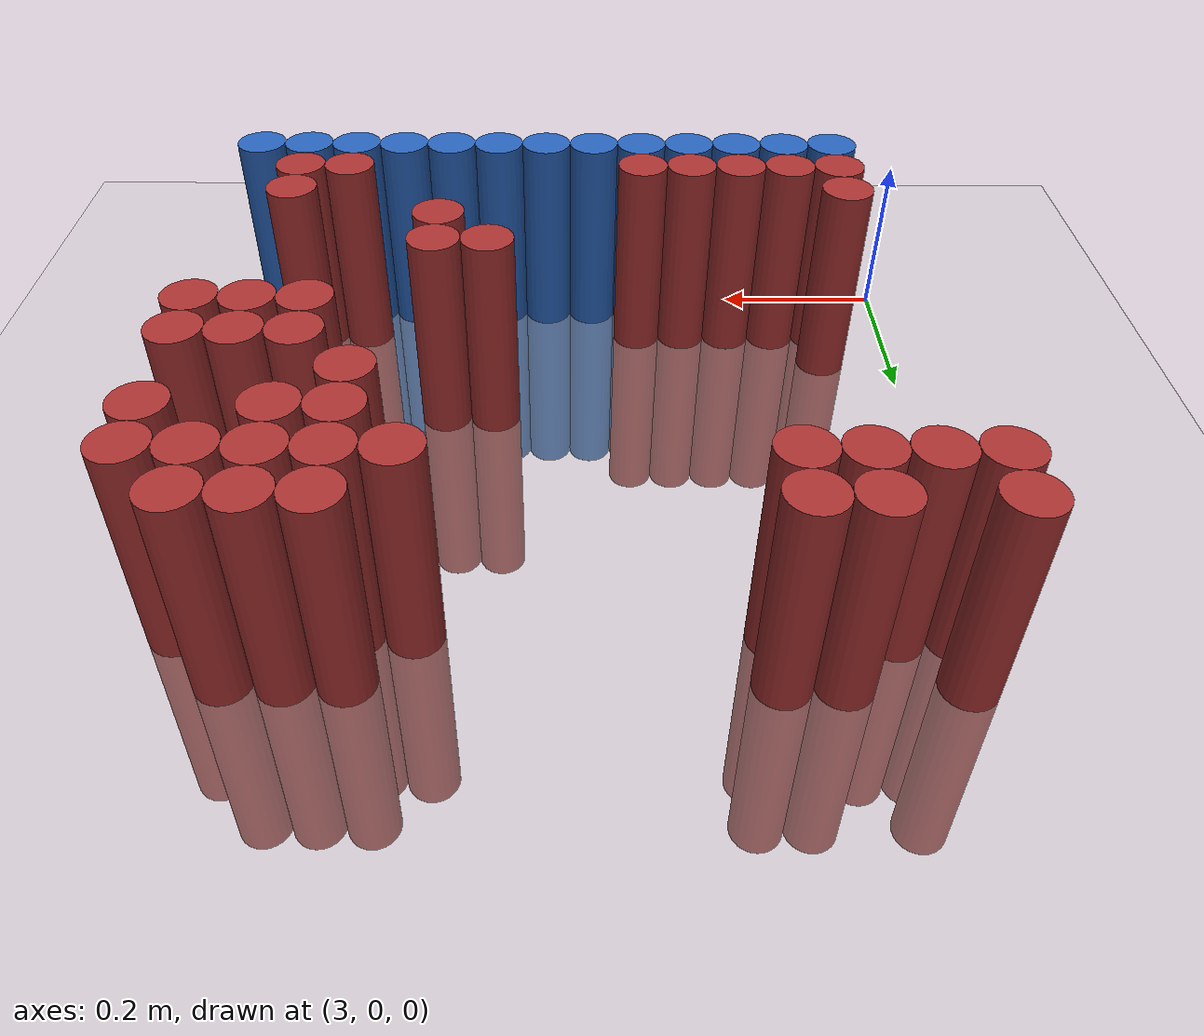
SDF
<sdf version="1.6">
 <world name="default">
  <model name="ground_plane">
   <static>1</static>
   <link name="link">
    <collision name="collision">
     <geometry><plane><normal>0 0 1</normal><size>100 100</size></plane></geometry>
     <surface><friction><ode><mu>100</mu><mu2>50</mu2></ode></friction></surface>
    </collision>
    <visual name="visual">
     <cast_shadows>0</cast_shadows>
     <geometry><plane><normal>0 0 1</normal><size>100 100</size></plane></geometry>
     <material>
      <script><uri>file://media/materials/scripts/gazebo.material</uri><name>Gazebo/Grey</name></script>
     </material>
    </visual>
   </link>
  </model>
  <model name="unit_cylinder_230">
   <static>1</static>
   <pose>3.030000 0.690000 0.000000 0.000000 0.000000 0.000000</pose>
   <link name="link">
    <inertial>
     <mass>1</mass>
     <inertia><ixx>0.145833</ixx><ixy>0</ixy><ixz>0</ixz><iyy>0.145833</iyy><iyz>0</iyz><izz>0.125</izz></inertia>
    </inertial>
    <collision name="collision">
     <geometry><cylinder><radius>0.030000</radius><length>0.5</length></cylinder></geometry>
    </collision>
    <visual name="visual">
     <geometry><cylinder><radius>0.030000</radius><length>0.5</length></cylinder></geometry>
     <material>
      <ambient>0.648000 0.192000 0.192000 1</ambient>
      <diffuse>0.648000 0.192000 0.192000 1</diffuse>
     </material>
     <material>
      <script><name>Gazebo/Grey</name><uri>file://media/materials/scripts/gazebo.material</uri></script>
     </material>
    </visual>
   </link>
  </model>
  <model name="unit_cylinder_231">
   <static>1</static>
   <pose>3.150000 0.690000 0.000000 0.000000 0.000000 0.000000</pose>
   <link name="link">
    <inertial>
     <mass>1</mass>
     <inertia><ixx>0.145833</ixx><ixy>0</ixy><ixz>0</ixz><iyy>0.145833</iyy><iyz>0</iyz><izz>0.125</izz></inertia>
    </inertial>
    <collision name="collision">
     <geometry><cylinder><radius>0.030000</radius><length>0.5</length></cylinder></geometry>
    </collision>
    <visual name="visual">
     <geometry><cylinder><radius>0.030000</radius><length>0.5</length></cylinder></geometry>
     <material>
      <ambient>0.648000 0.192000 0.192000 1</ambient>
      <diffuse>0.648000 0.192000 0.192000 1</diffuse>
     </material>
     <material>
      <script><name>Gazebo/Grey</name><uri>file://media/materials/scripts/gazebo.material</uri></script>
     </material>
    </visual>
   </link>
  </model>
  <model name="unit_cylinder_232">
   <static>1</static>
   <pose>3.210000 0.690000 0.000000 0.000000 0.000000 0.000000</pose>
   <link name="link">
    <inertial>
     <mass>1</mass>
     <inertia><ixx>0.145833</ixx><ixy>0</ixy><ixz>0</ixz><iyy>0.145833</iyy><iyz>0</iyz><izz>0.125</izz></inertia>
    </inertial>
    <collision name="collision">
     <geometry><cylinder><radius>0.030000</radius><length>0.5</length></cylinder></geometry>
    </collision>
    <visual name="visual">
     <geometry><cylinder><radius>0.030000</radius><length>0.5</length></cylinder></geometry>
     <material>
      <ambient>0.648000 0.192000 0.192000 1</ambient>
      <diffuse>0.648000 0.192000 0.192000 1</diffuse>
     </material>
     <material>
      <script><name>Gazebo/Grey</name><uri>file://media/materials/scripts/gazebo.material</uri></script>
     </material>
    </visual>
   </link>
  </model>
  <model name="unit_cylinder_233">
   <static>1</static>
   <pose>3.630000 0.690000 0.000000 0.000000 0.000000 0.000000</pose>
   <link name="link">
    <inertial>
     <mass>1</mass>
     <inertia><ixx>0.145833</ixx><ixy>0</ixy><ixz>0</ixz><iyy>0.145833</iyy><iyz>0</iyz><izz>0.125</izz></inertia>
    </inertial>
    <collision name="collision">
     <geometry><cylinder><radius>0.030000</radius><length>0.5</length></cylinder></geometry>
    </collision>
    <visual name="visual">
     <geometry><cylinder><radius>0.030000</radius><length>0.5</length></cylinder></geometry>
     <material>
      <ambient>0.648000 0.192000 0.192000 1</ambient>
      <diffuse>0.648000 0.192000 0.192000 1</diffuse>
     </material>
     <material>
      <script><name>Gazebo/Grey</name><uri>file://media/materials/scripts/gazebo.material</uri></script>
     </material>
    </visual>
   </link>
  </model>
  <model name="unit_cylinder_234">
   <static>1</static>
   <pose>3.690000 0.690000 0.000000 0.000000 0.000000 0.000000</pose>
   <link name="link">
    <inertial>
     <mass>1</mass>
     <inertia><ixx>0.145833</ixx><ixy>0</ixy><ixz>0</ixz><iyy>0.145833</iyy><iyz>0</iyz><izz>0.125</izz></inertia>
    </inertial>
    <collision name="collision">
     <geometry><cylinder><radius>0.030000</radius><length>0.5</length></cylinder></geometry>
    </collision>
    <visual name="visual">
     <geometry><cylinder><radius>0.030000</radius><length>0.5</length></cylinder></geometry>
     <material>
      <ambient>0.648000 0.192000 0.192000 1</ambient>
      <diffuse>0.648000 0.192000 0.192000 1</diffuse>
     </material>
     <material>
      <script><name>Gazebo/Grey</name><uri>file://media/materials/scripts/gazebo.material</uri></script>
     </material>
    </visual>
   </link>
  </model>
  <model name="unit_cylinder_235">
   <static>1</static>
   <pose>3.750000 0.690000 0.000000 0.000000 0.000000 0.000000</pose>
   <link name="link">
    <inertial>
     <mass>1</mass>
     <inertia><ixx>0.145833</ixx><ixy>0</ixy><ixz>0</ixz><iyy>0.145833</iyy><iyz>0</iyz><izz>0.125</izz></inertia>
    </inertial>
    <collision name="collision">
     <geometry><cylinder><radius>0.030000</radius><length>0.5</length></cylinder></geometry>
    </collision>
    <visual name="visual">
     <geometry><cylinder><radius>0.030000</radius><length>0.5</length></cylinder></geometry>
     <material>
      <ambient>0.648000 0.192000 0.192000 1</ambient>
      <diffuse>0.648000 0.192000 0.192000 1</diffuse>
     </material>
     <material>
      <script><name>Gazebo/Grey</name><uri>file://media/materials/scripts/gazebo.material</uri></script>
     </material>
    </visual>
   </link>
  </model>
  <model name="unit_cylinder_237">
   <static>1</static>
   <pose>3.030000 0.630000 0.000000 0.000000 0.000000 0.000000</pose>
   <link name="link">
    <inertial>
     <mass>1</mass>
     <inertia><ixx>0.145833</ixx><ixy>0</ixy><ixz>0</ixz><iyy>0.145833</iyy><iyz>0</iyz><izz>0.125</izz></inertia>
    </inertial>
    <collision name="collision">
     <geometry><cylinder><radius>0.030000</radius><length>0.5</length></cylinder></geometry>
    </collision>
    <visual name="visual">
     <geometry><cylinder><radius>0.030000</radius><length>0.5</length></cylinder></geometry>
     <material>
      <ambient>0.648000 0.192000 0.192000 1</ambient>
      <diffuse>0.648000 0.192000 0.192000 1</diffuse>
     </material>
     <material>
      <script><name>Gazebo/Grey</name><uri>file://media/materials/scripts/gazebo.material</uri></script>
     </material>
    </visual>
   </link>
  </model>
  <model name="unit_cylinder_238">
   <static>1</static>
   <pose>3.090000 0.630000 0.000000 0.000000 0.000000 0.000000</pose>
   <link name="link">
    <inertial>
     <mass>1</mass>
     <inertia><ixx>0.145833</ixx><ixy>0</ixy><ixz>0</ixz><iyy>0.145833</iyy><iyz>0</iyz><izz>0.125</izz></inertia>
    </inertial>
    <collision name="collision">
     <geometry><cylinder><radius>0.030000</radius><length>0.5</length></cylinder></geometry>
    </collision>
    <visual name="visual">
     <geometry><cylinder><radius>0.030000</radius><length>0.5</length></cylinder></geometry>
     <material>
      <ambient>0.648000 0.192000 0.192000 1</ambient>
      <diffuse>0.648000 0.192000 0.192000 1</diffuse>
     </material>
     <material>
      <script><name>Gazebo/Grey</name><uri>file://media/materials/scripts/gazebo.material</uri></script>
     </material>
    </visual>
   </link>
  </model>
  <model name="unit_cylinder_239">
   <static>1</static>
   <pose>3.150000 0.630000 0.000000 0.000000 0.000000 0.000000</pose>
   <link name="link">
    <inertial>
     <mass>1</mass>
     <inertia><ixx>0.145833</ixx><ixy>0</ixy><ixz>0</ixz><iyy>0.145833</iyy><iyz>0</iyz><izz>0.125</izz></inertia>
    </inertial>
    <collision name="collision">
     <geometry><cylinder><radius>0.030000</radius><length>0.5</length></cylinder></geometry>
    </collision>
    <visual name="visual">
     <geometry><cylinder><radius>0.030000</radius><length>0.5</length></cylinder></geometry>
     <material>
      <ambient>0.648000 0.192000 0.192000 1</ambient>
      <diffuse>0.648000 0.192000 0.192000 1</diffuse>
     </material>
     <material>
      <script><name>Gazebo/Grey</name><uri>file://media/materials/scripts/gazebo.material</uri></script>
     </material>
    </visual>
   </link>
  </model>
  <model name="unit_cylinder_240">
   <static>1</static>
   <pose>3.210000 0.630000 0.000000 0.000000 0.000000 0.000000</pose>
   <link name="link">
    <inertial>
     <mass>1</mass>
     <inertia><ixx>0.145833</ixx><ixy>0</ixy><ixz>0</ixz><iyy>0.145833</iyy><iyz>0</iyz><izz>0.125</izz></inertia>
    </inertial>
    <collision name="collision">
     <geometry><cylinder><radius>0.030000</radius><length>0.5</length></cylinder></geometry>
    </collision>
    <visual name="visual">
     <geometry><cylinder><radius>0.030000</radius><length>0.5</length></cylinder></geometry>
     <material>
      <ambient>0.648000 0.192000 0.192000 1</ambient>
      <diffuse>0.648000 0.192000 0.192000 1</diffuse>
     </material>
     <material>
      <script><name>Gazebo/Grey</name><uri>file://media/materials/scripts/gazebo.material</uri></script>
     </material>
    </visual>
   </link>
  </model>
  <model name="unit_cylinder_241">
   <static>1</static>
   <pose>3.570000 0.630000 0.000000 0.000000 0.000000 0.000000</pose>
   <link name="link">
    <inertial>
     <mass>1</mass>
     <inertia><ixx>0.145833</ixx><ixy>0</ixy><ixz>0</ixz><iyy>0.145833</iyy><iyz>0</iyz><izz>0.125</izz></inertia>
    </inertial>
    <collision name="collision">
     <geometry><cylinder><radius>0.030000</radius><length>0.5</length></cylinder></geometry>
    </collision>
    <visual name="visual">
     <geometry><cylinder><radius>0.030000</radius><length>0.5</length></cylinder></geometry>
     <material>
      <ambient>0.648000 0.192000 0.192000 1</ambient>
      <diffuse>0.648000 0.192000 0.192000 1</diffuse>
     </material>
     <material>
      <script><name>Gazebo/Grey</name><uri>file://media/materials/scripts/gazebo.material</uri></script>
     </material>
    </visual>
   </link>
  </model>
  <model name="unit_cylinder_242">
   <static>1</static>
   <pose>3.630000 0.630000 0.000000 0.000000 0.000000 0.000000</pose>
   <link name="link">
    <inertial>
     <mass>1</mass>
     <inertia><ixx>0.145833</ixx><ixy>0</ixy><ixz>0</ixz><iyy>0.145833</iyy><iyz>0</iyz><izz>0.125</izz></inertia>
    </inertial>
    <collision name="collision">
     <geometry><cylinder><radius>0.030000</radius><length>0.5</length></cylinder></geometry>
    </collision>
    <visual name="visual">
     <geometry><cylinder><radius>0.030000</radius><length>0.5</length></cylinder></geometry>
     <material>
      <ambient>0.648000 0.192000 0.192000 1</ambient>
      <diffuse>0.648000 0.192000 0.192000 1</diffuse>
     </material>
     <material>
      <script><name>Gazebo/Grey</name><uri>file://media/materials/scripts/gazebo.material</uri></script>
     </material>
    </visual>
   </link>
  </model>
  <model name="unit_cylinder_243">
   <static>1</static>
   <pose>3.690000 0.630000 0.000000 0.000000 0.000000 0.000000</pose>
   <link name="link">
    <inertial>
     <mass>1</mass>
     <inertia><ixx>0.145833</ixx><ixy>0</ixy><ixz>0</ixz><iyy>0.145833</iyy><iyz>0</iyz><izz>0.125</izz></inertia>
    </inertial>
    <collision name="collision">
     <geometry><cylinder><radius>0.030000</radius><length>0.5</length></cylinder></geometry>
    </collision>
    <visual name="visual">
     <geometry><cylinder><radius>0.030000</radius><length>0.5</length></cylinder></geometry>
     <material>
      <ambient>0.648000 0.192000 0.192000 1</ambient>
      <diffuse>0.648000 0.192000 0.192000 1</diffuse>
     </material>
     <material>
      <script><name>Gazebo/Grey</name><uri>file://media/materials/scripts/gazebo.material</uri></script>
     </material>
    </visual>
   </link>
  </model>
  <model name="unit_cylinder_244">
   <static>1</static>
   <pose>3.750000 0.630000 0.000000 0.000000 0.000000 0.000000</pose>
   <link name="link">
    <inertial>
     <mass>1</mass>
     <inertia><ixx>0.145833</ixx><ixy>0</ixy><ixz>0</ixz><iyy>0.145833</iyy><iyz>0</iyz><izz>0.125</izz></inertia>
    </inertial>
    <collision name="collision">
     <geometry><cylinder><radius>0.030000</radius><length>0.5</length></cylinder></geometry>
    </collision>
    <visual name="visual">
     <geometry><cylinder><radius>0.030000</radius><length>0.5</length></cylinder></geometry>
     <material>
      <ambient>0.648000 0.192000 0.192000 1</ambient>
      <diffuse>0.648000 0.192000 0.192000 1</diffuse>
     </material>
     <material>
      <script><name>Gazebo/Grey</name><uri>file://media/materials/scripts/gazebo.material</uri></script>
     </material>
    </visual>
   </link>
  </model>
  <model name="unit_cylinder_245">
   <static>1</static>
   <pose>3.810000 0.630000 0.000000 0.000000 0.000000 0.000000</pose>
   <link name="link">
    <inertial>
     <mass>1</mass>
     <inertia><ixx>0.145833</ixx><ixy>0</ixy><ixz>0</ixz><iyy>0.145833</iyy><iyz>0</iyz><izz>0.125</izz></inertia>
    </inertial>
    <collision name="collision">
     <geometry><cylinder><radius>0.030000</radius><length>0.5</length></cylinder></geometry>
    </collision>
    <visual name="visual">
     <geometry><cylinder><radius>0.030000</radius><length>0.5</length></cylinder></geometry>
     <material>
      <ambient>0.648000 0.192000 0.192000 1</ambient>
      <diffuse>0.648000 0.192000 0.192000 1</diffuse>
     </material>
     <material>
      <script><name>Gazebo/Grey</name><uri>file://media/materials/scripts/gazebo.material</uri></script>
     </material>
    </visual>
   </link>
  </model>
  <model name="unit_cylinder_246">
   <static>1</static>
   <pose>3.630000 0.570000 0.000000 0.000000 0.000000 0.000000</pose>
   <link name="link">
    <inertial>
     <mass>1</mass>
     <inertia><ixx>0.145833</ixx><ixy>0</ixy><ixz>0</ixz><iyy>0.145833</iyy><iyz>0</iyz><izz>0.125</izz></inertia>
    </inertial>
    <collision name="collision">
     <geometry><cylinder><radius>0.030000</radius><length>0.5</length></cylinder></geometry>
    </collision>
    <visual name="visual">
     <geometry><cylinder><radius>0.030000</radius><length>0.5</length></cylinder></geometry>
     <material>
      <ambient>0.648000 0.192000 0.192000 1</ambient>
      <diffuse>0.648000 0.192000 0.192000 1</diffuse>
     </material>
     <material>
      <script><name>Gazebo/Grey</name><uri>file://media/materials/scripts/gazebo.material</uri></script>
     </material>
    </visual>
   </link>
  </model>
  <model name="unit_cylinder_247">
   <static>1</static>
   <pose>3.690000 0.570000 0.000000 0.000000 0.000000 0.000000</pose>
   <link name="link">
    <inertial>
     <mass>1</mass>
     <inertia><ixx>0.145833</ixx><ixy>0</ixy><ixz>0</ixz><iyy>0.145833</iyy><iyz>0</iyz><izz>0.125</izz></inertia>
    </inertial>
    <collision name="collision">
     <geometry><cylinder><radius>0.030000</radius><length>0.5</length></cylinder></geometry>
    </collision>
    <visual name="visual">
     <geometry><cylinder><radius>0.030000</radius><length>0.5</length></cylinder></geometry>
     <material>
      <ambient>0.648000 0.192000 0.192000 1</ambient>
      <diffuse>0.648000 0.192000 0.192000 1</diffuse>
     </material>
     <material>
      <script><name>Gazebo/Grey</name><uri>file://media/materials/scripts/gazebo.material</uri></script>
     </material>
    </visual>
   </link>
  </model>
  <model name="unit_cylinder_248">
   <static>1</static>
   <pose>3.810000 0.570000 0.000000 0.000000 0.000000 0.000000</pose>
   <link name="link">
    <inertial>
     <mass>1</mass>
     <inertia><ixx>0.145833</ixx><ixy>0</ixy><ixz>0</ixz><iyy>0.145833</iyy><iyz>0</iyz><izz>0.125</izz></inertia>
    </inertial>
    <collision name="collision">
     <geometry><cylinder><radius>0.030000</radius><length>0.5</length></cylinder></geometry>
    </collision>
    <visual name="visual">
     <geometry><cylinder><radius>0.030000</radius><length>0.5</length></cylinder></geometry>
     <material>
      <ambient>0.648000 0.192000 0.192000 1</ambient>
      <diffuse>0.648000 0.192000 0.192000 1</diffuse>
     </material>
     <material>
      <script><name>Gazebo/Grey</name><uri>file://media/materials/scripts/gazebo.material</uri></script>
     </material>
    </visual>
   </link>
  </model>
  <model name="unit_cylinder_249">
   <static>1</static>
   <pose>3.630000 0.510000 0.000000 0.000000 0.000000 0.000000</pose>
   <link name="link">
    <inertial>
     <mass>1</mass>
     <inertia><ixx>0.145833</ixx><ixy>0</ixy><ixz>0</ixz><iyy>0.145833</iyy><iyz>0</iyz><izz>0.125</izz></inertia>
    </inertial>
    <collision name="collision">
     <geometry><cylinder><radius>0.030000</radius><length>0.5</length></cylinder></geometry>
    </collision>
    <visual name="visual">
     <geometry><cylinder><radius>0.030000</radius><length>0.5</length></cylinder></geometry>
     <material>
      <ambient>0.648000 0.192000 0.192000 1</ambient>
      <diffuse>0.648000 0.192000 0.192000 1</diffuse>
     </material>
     <material>
      <script><name>Gazebo/Grey</name><uri>file://media/materials/scripts/gazebo.material</uri></script>
     </material>
    </visual>
   </link>
  </model>
  <model name="unit_cylinder_255">
   <static>1</static>
   <pose>3.690000 0.450000 0.000000 0.000000 0.000000 0.000000</pose>
   <link name="link">
    <inertial>
     <mass>1</mass>
     <inertia><ixx>0.145833</ixx><ixy>0</ixy><ixz>0</ixz><iyy>0.145833</iyy><iyz>0</iyz><izz>0.125</izz></inertia>
    </inertial>
    <collision name="collision">
     <geometry><cylinder><radius>0.030000</radius><length>0.5</length></cylinder></geometry>
    </collision>
    <visual name="visual">
     <geometry><cylinder><radius>0.030000</radius><length>0.5</length></cylinder></geometry>
     <material>
      <ambient>0.648000 0.192000 0.192000 1</ambient>
      <diffuse>0.648000 0.192000 0.192000 1</diffuse>
     </material>
     <material>
      <script><name>Gazebo/Grey</name><uri>file://media/materials/scripts/gazebo.material</uri></script>
     </material>
    </visual>
   </link>
  </model>
  <model name="unit_cylinder_256">
   <static>1</static>
   <pose>3.750000 0.450000 0.000000 0.000000 0.000000 0.000000</pose>
   <link name="link">
    <inertial>
     <mass>1</mass>
     <inertia><ixx>0.145833</ixx><ixy>0</ixy><ixz>0</ixz><iyy>0.145833</iyy><iyz>0</iyz><izz>0.125</izz></inertia>
    </inertial>
    <collision name="collision">
     <geometry><cylinder><radius>0.030000</radius><length>0.5</length></cylinder></geometry>
    </collision>
    <visual name="visual">
     <geometry><cylinder><radius>0.030000</radius><length>0.5</length></cylinder></geometry>
     <material>
      <ambient>0.648000 0.192000 0.192000 1</ambient>
      <diffuse>0.648000 0.192000 0.192000 1</diffuse>
     </material>
     <material>
      <script><name>Gazebo/Grey</name><uri>file://media/materials/scripts/gazebo.material</uri></script>
     </material>
    </visual>
   </link>
  </model>
  <model name="unit_cylinder_257">
   <static>1</static>
   <pose>3.810000 0.450000 0.000000 0.000000 0.000000 0.000000</pose>
   <link name="link">
    <inertial>
     <mass>1</mass>
     <inertia><ixx>0.145833</ixx><ixy>0</ixy><ixz>0</ixz><iyy>0.145833</iyy><iyz>0</iyz><izz>0.125</izz></inertia>
    </inertial>
    <collision name="collision">
     <geometry><cylinder><radius>0.030000</radius><length>0.5</length></cylinder></geometry>
    </collision>
    <visual name="visual">
     <geometry><cylinder><radius>0.030000</radius><length>0.5</length></cylinder></geometry>
     <material>
      <ambient>0.648000 0.192000 0.192000 1</ambient>
      <diffuse>0.648000 0.192000 0.192000 1</diffuse>
     </material>
     <material>
      <script><name>Gazebo/Grey</name><uri>file://media/materials/scripts/gazebo.material</uri></script>
     </material>
    </visual>
   </link>
  </model>
  <model name="unit_cylinder_265">
   <static>1</static>
   <pose>3.690000 0.390000 0.000000 0.000000 0.000000 0.000000</pose>
   <link name="link">
    <inertial>
     <mass>1</mass>
     <inertia><ixx>0.145833</ixx><ixy>0</ixy><ixz>0</ixz><iyy>0.145833</iyy><iyz>0</iyz><izz>0.125</izz></inertia>
    </inertial>
    <collision name="collision">
     <geometry><cylinder><radius>0.030000</radius><length>0.5</length></cylinder></geometry>
    </collision>
    <visual name="visual">
     <geometry><cylinder><radius>0.030000</radius><length>0.5</length></cylinder></geometry>
     <material>
      <ambient>0.648000 0.192000 0.192000 1</ambient>
      <diffuse>0.648000 0.192000 0.192000 1</diffuse>
     </material>
     <material>
      <script><name>Gazebo/Grey</name><uri>file://media/materials/scripts/gazebo.material</uri></script>
     </material>
    </visual>
   </link>
  </model>
  <model name="unit_cylinder_266">
   <static>1</static>
   <pose>3.750000 0.390000 0.000000 0.000000 0.000000 0.000000</pose>
   <link name="link">
    <inertial>
     <mass>1</mass>
     <inertia><ixx>0.145833</ixx><ixy>0</ixy><ixz>0</ixz><iyy>0.145833</iyy><iyz>0</iyz><izz>0.125</izz></inertia>
    </inertial>
    <collision name="collision">
     <geometry><cylinder><radius>0.030000</radius><length>0.5</length></cylinder></geometry>
    </collision>
    <visual name="visual">
     <geometry><cylinder><radius>0.030000</radius><length>0.5</length></cylinder></geometry>
     <material>
      <ambient>0.648000 0.192000 0.192000 1</ambient>
      <diffuse>0.648000 0.192000 0.192000 1</diffuse>
     </material>
     <material>
      <script><name>Gazebo/Grey</name><uri>file://media/materials/scripts/gazebo.material</uri></script>
     </material>
    </visual>
   </link>
  </model>
  <model name="unit_cylinder_267">
   <static>1</static>
   <pose>3.810000 0.390000 0.000000 0.000000 0.000000 0.000000</pose>
   <link name="link">
    <inertial>
     <mass>1</mass>
     <inertia><ixx>0.145833</ixx><ixy>0</ixy><ixz>0</ixz><iyy>0.145833</iyy><iyz>0</iyz><izz>0.125</izz></inertia>
    </inertial>
    <collision name="collision">
     <geometry><cylinder><radius>0.030000</radius><length>0.5</length></cylinder></geometry>
    </collision>
    <visual name="visual">
     <geometry><cylinder><radius>0.030000</radius><length>0.5</length></cylinder></geometry>
     <material>
      <ambient>0.648000 0.192000 0.192000 1</ambient>
      <diffuse>0.648000 0.192000 0.192000 1</diffuse>
     </material>
     <material>
      <script><name>Gazebo/Grey</name><uri>file://media/materials/scripts/gazebo.material</uri></script>
     </material>
    </visual>
   </link>
  </model>
  <model name="unit_cylinder_279">
   <static>1</static>
   <pose>3.510000 0.270000 0.000000 0.000000 0.000000 0.000000</pose>
   <link name="link">
    <inertial>
     <mass>1</mass>
     <inertia><ixx>0.145833</ixx><ixy>0</ixy><ixz>0</ixz><iyy>0.145833</iyy><iyz>0</iyz><izz>0.125</izz></inertia>
    </inertial>
    <collision name="collision">
     <geometry><cylinder><radius>0.030000</radius><length>0.5</length></cylinder></geometry>
    </collision>
    <visual name="visual">
     <geometry><cylinder><radius>0.030000</radius><length>0.5</length></cylinder></geometry>
     <material>
      <ambient>0.648000 0.192000 0.192000 1</ambient>
      <diffuse>0.648000 0.192000 0.192000 1</diffuse>
     </material>
     <material>
      <script><name>Gazebo/Grey</name><uri>file://media/materials/scripts/gazebo.material</uri></script>
     </material>
    </visual>
   </link>
  </model>
  <model name="unit_cylinder_280">
   <static>1</static>
   <pose>3.570000 0.270000 0.000000 0.000000 0.000000 0.000000</pose>
   <link name="link">
    <inertial>
     <mass>1</mass>
     <inertia><ixx>0.145833</ixx><ixy>0</ixy><ixz>0</ixz><iyy>0.145833</iyy><iyz>0</iyz><izz>0.125</izz></inertia>
    </inertial>
    <collision name="collision">
     <geometry><cylinder><radius>0.030000</radius><length>0.5</length></cylinder></geometry>
    </collision>
    <visual name="visual">
     <geometry><cylinder><radius>0.030000</radius><length>0.5</length></cylinder></geometry>
     <material>
      <ambient>0.648000 0.192000 0.192000 1</ambient>
      <diffuse>0.648000 0.192000 0.192000 1</diffuse>
     </material>
     <material>
      <script><name>Gazebo/Grey</name><uri>file://media/materials/scripts/gazebo.material</uri></script>
     </material>
    </visual>
   </link>
  </model>
  <model name="unit_cylinder_284">
   <static>1</static>
   <pose>3.570000 0.210000 0.000000 0.000000 0.000000 0.000000</pose>
   <link name="link">
    <inertial>
     <mass>1</mass>
     <inertia><ixx>0.145833</ixx><ixy>0</ixy><ixz>0</ixz><iyy>0.145833</iyy><iyz>0</iyz><izz>0.125</izz></inertia>
    </inertial>
    <collision name="collision">
     <geometry><cylinder><radius>0.030000</radius><length>0.5</length></cylinder></geometry>
    </collision>
    <visual name="visual">
     <geometry><cylinder><radius>0.030000</radius><length>0.5</length></cylinder></geometry>
     <material>
      <ambient>0.648000 0.192000 0.192000 1</ambient>
      <diffuse>0.648000 0.192000 0.192000 1</diffuse>
     </material>
     <material>
      <script><name>Gazebo/Grey</name><uri>file://media/materials/scripts/gazebo.material</uri></script>
     </material>
    </visual>
   </link>
  </model>
  <model name="unit_cylinder_296">
   <static>1</static>
   <pose>3.090000 0.150000 0.000000 0.000000 0.000000 0.000000</pose>
   <link name="link">
    <inertial>
     <mass>1</mass>
     <inertia><ixx>0.145833</ixx><ixy>0</ixy><ixz>0</ixz><iyy>0.145833</iyy><iyz>0</iyz><izz>0.125</izz></inertia>
    </inertial>
    <collision name="collision">
     <geometry><cylinder><radius>0.030000</radius><length>0.5</length></cylinder></geometry>
    </collision>
    <visual name="visual">
     <geometry><cylinder><radius>0.030000</radius><length>0.5</length></cylinder></geometry>
     <material>
      <ambient>0.648000 0.192000 0.192000 1</ambient>
      <diffuse>0.648000 0.192000 0.192000 1</diffuse>
     </material>
     <material>
      <script><name>Gazebo/Grey</name><uri>file://media/materials/scripts/gazebo.material</uri></script>
     </material>
    </visual>
   </link>
  </model>
  <model name="unit_cylinder_297">
   <static>1</static>
   <pose>3.750000 0.150000 0.000000 0.000000 0.000000 0.000000</pose>
   <link name="link">
    <inertial>
     <mass>1</mass>
     <inertia><ixx>0.145833</ixx><ixy>0</ixy><ixz>0</ixz><iyy>0.145833</iyy><iyz>0</iyz><izz>0.125</izz></inertia>
    </inertial>
    <collision name="collision">
     <geometry><cylinder><radius>0.030000</radius><length>0.5</length></cylinder></geometry>
    </collision>
    <visual name="visual">
     <geometry><cylinder><radius>0.030000</radius><length>0.5</length></cylinder></geometry>
     <material>
      <ambient>0.648000 0.192000 0.192000 1</ambient>
      <diffuse>0.648000 0.192000 0.192000 1</diffuse>
     </material>
     <material>
      <script><name>Gazebo/Grey</name><uri>file://media/materials/scripts/gazebo.material</uri></script>
     </material>
    </visual>
   </link>
  </model>
  <model name="unit_cylinder_309">
   <static>1</static>
   <pose>3.090000 0.090000 0.000000 0.000000 0.000000 0.000000</pose>
   <link name="link">
    <inertial>
     <mass>1</mass>
     <inertia><ixx>0.145833</ixx><ixy>0</ixy><ixz>0</ixz><iyy>0.145833</iyy><iyz>0</iyz><izz>0.125</izz></inertia>
    </inertial>
    <collision name="collision">
     <geometry><cylinder><radius>0.030000</radius><length>0.5</length></cylinder></geometry>
    </collision>
    <visual name="visual">
     <geometry><cylinder><radius>0.030000</radius><length>0.5</length></cylinder></geometry>
     <material>
      <ambient>0.648000 0.192000 0.192000 1</ambient>
      <diffuse>0.648000 0.192000 0.192000 1</diffuse>
     </material>
     <material>
      <script><name>Gazebo/Grey</name><uri>file://media/materials/scripts/gazebo.material</uri></script>
     </material>
    </visual>
   </link>
  </model>
  <model name="unit_cylinder_310">
   <static>1</static>
   <pose>3.150000 0.090000 0.000000 0.000000 0.000000 0.000000</pose>
   <link name="link">
    <inertial>
     <mass>1</mass>
     <inertia><ixx>0.145833</ixx><ixy>0</ixy><ixz>0</ixz><iyy>0.145833</iyy><iyz>0</iyz><izz>0.125</izz></inertia>
    </inertial>
    <collision name="collision">
     <geometry><cylinder><radius>0.030000</radius><length>0.5</length></cylinder></geometry>
    </collision>
    <visual name="visual">
     <geometry><cylinder><radius>0.030000</radius><length>0.5</length></cylinder></geometry>
     <material>
      <ambient>0.648000 0.192000 0.192000 1</ambient>
      <diffuse>0.648000 0.192000 0.192000 1</diffuse>
     </material>
     <material>
      <script><name>Gazebo/Grey</name><uri>file://media/materials/scripts/gazebo.material</uri></script>
     </material>
    </visual>
   </link>
  </model>
  <model name="unit_cylinder_311">
   <static>1</static>
   <pose>3.210000 0.090000 0.000000 0.000000 0.000000 0.000000</pose>
   <link name="link">
    <inertial>
     <mass>1</mass>
     <inertia><ixx>0.145833</ixx><ixy>0</ixy><ixz>0</ixz><iyy>0.145833</iyy><iyz>0</iyz><izz>0.125</izz></inertia>
    </inertial>
    <collision name="collision">
     <geometry><cylinder><radius>0.030000</radius><length>0.5</length></cylinder></geometry>
    </collision>
    <visual name="visual">
     <geometry><cylinder><radius>0.030000</radius><length>0.5</length></cylinder></geometry>
     <material>
      <ambient>0.648000 0.192000 0.192000 1</ambient>
      <diffuse>0.648000 0.192000 0.192000 1</diffuse>
     </material>
     <material>
      <script><name>Gazebo/Grey</name><uri>file://media/materials/scripts/gazebo.material</uri></script>
     </material>
    </visual>
   </link>
  </model>
  <model name="unit_cylinder_312">
   <static>1</static>
   <pose>3.270000 0.090000 0.000000 0.000000 0.000000 0.000000</pose>
   <link name="link">
    <inertial>
     <mass>1</mass>
     <inertia><ixx>0.145833</ixx><ixy>0</ixy><ixz>0</ixz><iyy>0.145833</iyy><iyz>0</iyz><izz>0.125</izz></inertia>
    </inertial>
    <collision name="collision">
     <geometry><cylinder><radius>0.030000</radius><length>0.5</length></cylinder></geometry>
    </collision>
    <visual name="visual">
     <geometry><cylinder><radius>0.030000</radius><length>0.5</length></cylinder></geometry>
     <material>
      <ambient>0.648000 0.192000 0.192000 1</ambient>
      <diffuse>0.648000 0.192000 0.192000 1</diffuse>
     </material>
     <material>
      <script><name>Gazebo/Grey</name><uri>file://media/materials/scripts/gazebo.material</uri></script>
     </material>
    </visual>
   </link>
  </model>
  <model name="unit_cylinder_313">
   <static>1</static>
   <pose>3.330000 0.090000 0.000000 0.000000 0.000000 0.000000</pose>
   <link name="link">
    <inertial>
     <mass>1</mass>
     <inertia><ixx>0.145833</ixx><ixy>0</ixy><ixz>0</ixz><iyy>0.145833</iyy><iyz>0</iyz><izz>0.125</izz></inertia>
    </inertial>
    <collision name="collision">
     <geometry><cylinder><radius>0.030000</radius><length>0.5</length></cylinder></geometry>
    </collision>
    <visual name="visual">
     <geometry><cylinder><radius>0.030000</radius><length>0.5</length></cylinder></geometry>
     <material>
      <ambient>0.648000 0.192000 0.192000 1</ambient>
      <diffuse>0.648000 0.192000 0.192000 1</diffuse>
     </material>
     <material>
      <script><name>Gazebo/Grey</name><uri>file://media/materials/scripts/gazebo.material</uri></script>
     </material>
    </visual>
   </link>
  </model>
  <model name="unit_cylinder_314">
   <static>1</static>
   <pose>3.690000 0.090000 0.000000 0.000000 0.000000 0.000000</pose>
   <link name="link">
    <inertial>
     <mass>1</mass>
     <inertia><ixx>0.145833</ixx><ixy>0</ixy><ixz>0</ixz><iyy>0.145833</iyy><iyz>0</iyz><izz>0.125</izz></inertia>
    </inertial>
    <collision name="collision">
     <geometry><cylinder><radius>0.030000</radius><length>0.5</length></cylinder></geometry>
    </collision>
    <visual name="visual">
     <geometry><cylinder><radius>0.030000</radius><length>0.5</length></cylinder></geometry>
     <material>
      <ambient>0.648000 0.192000 0.192000 1</ambient>
      <diffuse>0.648000 0.192000 0.192000 1</diffuse>
     </material>
     <material>
      <script><name>Gazebo/Grey</name><uri>file://media/materials/scripts/gazebo.material</uri></script>
     </material>
    </visual>
   </link>
  </model>
  <model name="unit_cylinder_315">
   <static>1</static>
   <pose>3.750000 0.090000 0.000000 0.000000 0.000000 0.000000</pose>
   <link name="link">
    <inertial>
     <mass>1</mass>
     <inertia><ixx>0.145833</ixx><ixy>0</ixy><ixz>0</ixz><iyy>0.145833</iyy><iyz>0</iyz><izz>0.125</izz></inertia>
    </inertial>
    <collision name="collision">
     <geometry><cylinder><radius>0.030000</radius><length>0.5</length></cylinder></geometry>
    </collision>
    <visual name="visual">
     <geometry><cylinder><radius>0.030000</radius><length>0.5</length></cylinder></geometry>
     <material>
      <ambient>0.648000 0.192000 0.192000 1</ambient>
      <diffuse>0.648000 0.192000 0.192000 1</diffuse>
     </material>
     <material>
      <script><name>Gazebo/Grey</name><uri>file://media/materials/scripts/gazebo.material</uri></script>
     </material>
    </visual>
   </link>
  </model>
  <model name="unit_cylinder_333">
   <static>1</static>
   <pose>3.090000 0.030000 0.000000 0.000000 0.000000 0.000000</pose>
   <link name="link">
    <inertial>
     <mass>1</mass>
     <inertia><ixx>0.145833</ixx><ixy>0</ixy><ixz>0</ixz><iyy>0.145833</iyy><iyz>0</iyz><izz>0.125</izz></inertia>
    </inertial>
    <collision name="collision">
     <geometry><cylinder><radius>0.030000</radius><length>0.5</length></cylinder></geometry>
    </collision>
    <visual name="visual">
     <geometry><cylinder><radius>0.030000</radius><length>0.5</length></cylinder></geometry>
     <material>
      <ambient>0.152000 0.379000 0.720000 1</ambient>
      <diffuse>0.152000 0.379000 0.720000 1</diffuse>
     </material>
     <material>
      <script><name>Gazebo/Grey</name><uri>file://media/materials/scripts/gazebo.material</uri></script>
     </material>
    </visual>
   </link>
  </model>
  <model name="unit_cylinder_334">
   <static>1</static>
   <pose>3.150000 0.030000 0.000000 0.000000 0.000000 0.000000</pose>
   <link name="link">
    <inertial>
     <mass>1</mass>
     <inertia><ixx>0.145833</ixx><ixy>0</ixy><ixz>0</ixz><iyy>0.145833</iyy><iyz>0</iyz><izz>0.125</izz></inertia>
    </inertial>
    <collision name="collision">
     <geometry><cylinder><radius>0.030000</radius><length>0.5</length></cylinder></geometry>
    </collision>
    <visual name="visual">
     <geometry><cylinder><radius>0.030000</radius><length>0.5</length></cylinder></geometry>
     <material>
      <ambient>0.152000 0.379000 0.720000 1</ambient>
      <diffuse>0.152000 0.379000 0.720000 1</diffuse>
     </material>
     <material>
      <script><name>Gazebo/Grey</name><uri>file://media/materials/scripts/gazebo.material</uri></script>
     </material>
    </visual>
   </link>
  </model>
  <model name="unit_cylinder_335">
   <static>1</static>
   <pose>3.210000 0.030000 0.000000 0.000000 0.000000 0.000000</pose>
   <link name="link">
    <inertial>
     <mass>1</mass>
     <inertia><ixx>0.145833</ixx><ixy>0</ixy><ixz>0</ixz><iyy>0.145833</iyy><iyz>0</iyz><izz>0.125</izz></inertia>
    </inertial>
    <collision name="collision">
     <geometry><cylinder><radius>0.030000</radius><length>0.5</length></cylinder></geometry>
    </collision>
    <visual name="visual">
     <geometry><cylinder><radius>0.030000</radius><length>0.5</length></cylinder></geometry>
     <material>
      <ambient>0.152000 0.379000 0.720000 1</ambient>
      <diffuse>0.152000 0.379000 0.720000 1</diffuse>
     </material>
     <material>
      <script><name>Gazebo/Grey</name><uri>file://media/materials/scripts/gazebo.material</uri></script>
     </material>
    </visual>
   </link>
  </model>
  <model name="unit_cylinder_336">
   <static>1</static>
   <pose>3.270000 0.030000 0.000000 0.000000 0.000000 0.000000</pose>
   <link name="link">
    <inertial>
     <mass>1</mass>
     <inertia><ixx>0.145833</ixx><ixy>0</ixy><ixz>0</ixz><iyy>0.145833</iyy><iyz>0</iyz><izz>0.125</izz></inertia>
    </inertial>
    <collision name="collision">
     <geometry><cylinder><radius>0.030000</radius><length>0.5</length></cylinder></geometry>
    </collision>
    <visual name="visual">
     <geometry><cylinder><radius>0.030000</radius><length>0.5</length></cylinder></geometry>
     <material>
      <ambient>0.152000 0.379000 0.720000 1</ambient>
      <diffuse>0.152000 0.379000 0.720000 1</diffuse>
     </material>
     <material>
      <script><name>Gazebo/Grey</name><uri>file://media/materials/scripts/gazebo.material</uri></script>
     </material>
    </visual>
   </link>
  </model>
  <model name="unit_cylinder_337">
   <static>1</static>
   <pose>3.330000 0.030000 0.000000 0.000000 0.000000 0.000000</pose>
   <link name="link">
    <inertial>
     <mass>1</mass>
     <inertia><ixx>0.145833</ixx><ixy>0</ixy><ixz>0</ixz><iyy>0.145833</iyy><iyz>0</iyz><izz>0.125</izz></inertia>
    </inertial>
    <collision name="collision">
     <geometry><cylinder><radius>0.030000</radius><length>0.5</length></cylinder></geometry>
    </collision>
    <visual name="visual">
     <geometry><cylinder><radius>0.030000</radius><length>0.5</length></cylinder></geometry>
     <material>
      <ambient>0.152000 0.379000 0.720000 1</ambient>
      <diffuse>0.152000 0.379000 0.720000 1</diffuse>
     </material>
     <material>
      <script><name>Gazebo/Grey</name><uri>file://media/materials/scripts/gazebo.material</uri></script>
     </material>
    </visual>
   </link>
  </model>
  <model name="unit_cylinder_338">
   <static>1</static>
   <pose>3.390000 0.030000 0.000000 0.000000 0.000000 0.000000</pose>
   <link name="link">
    <inertial>
     <mass>1</mass>
     <inertia><ixx>0.145833</ixx><ixy>0</ixy><ixz>0</ixz><iyy>0.145833</iyy><iyz>0</iyz><izz>0.125</izz></inertia>
    </inertial>
    <collision name="collision">
     <geometry><cylinder><radius>0.030000</radius><length>0.5</length></cylinder></geometry>
    </collision>
    <visual name="visual">
     <geometry><cylinder><radius>0.030000</radius><length>0.5</length></cylinder></geometry>
     <material>
      <ambient>0.152000 0.379000 0.720000 1</ambient>
      <diffuse>0.152000 0.379000 0.720000 1</diffuse>
     </material>
     <material>
      <script><name>Gazebo/Grey</name><uri>file://media/materials/scripts/gazebo.material</uri></script>
     </material>
    </visual>
   </link>
  </model>
  <model name="unit_cylinder_339">
   <static>1</static>
   <pose>3.450000 0.030000 0.000000 0.000000 0.000000 0.000000</pose>
   <link name="link">
    <inertial>
     <mass>1</mass>
     <inertia><ixx>0.145833</ixx><ixy>0</ixy><ixz>0</ixz><iyy>0.145833</iyy><iyz>0</iyz><izz>0.125</izz></inertia>
    </inertial>
    <collision name="collision">
     <geometry><cylinder><radius>0.030000</radius><length>0.5</length></cylinder></geometry>
    </collision>
    <visual name="visual">
     <geometry><cylinder><radius>0.030000</radius><length>0.5</length></cylinder></geometry>
     <material>
      <ambient>0.152000 0.379000 0.720000 1</ambient>
      <diffuse>0.152000 0.379000 0.720000 1</diffuse>
     </material>
     <material>
      <script><name>Gazebo/Grey</name><uri>file://media/materials/scripts/gazebo.material</uri></script>
     </material>
    </visual>
   </link>
  </model>
  <model name="unit_cylinder_340">
   <static>1</static>
   <pose>3.510000 0.030000 0.000000 0.000000 0.000000 0.000000</pose>
   <link name="link">
    <inertial>
     <mass>1</mass>
     <inertia><ixx>0.145833</ixx><ixy>0</ixy><ixz>0</ixz><iyy>0.145833</iyy><iyz>0</iyz><izz>0.125</izz></inertia>
    </inertial>
    <collision name="collision">
     <geometry><cylinder><radius>0.030000</radius><length>0.5</length></cylinder></geometry>
    </collision>
    <visual name="visual">
     <geometry><cylinder><radius>0.030000</radius><length>0.5</length></cylinder></geometry>
     <material>
      <ambient>0.152000 0.379000 0.720000 1</ambient>
      <diffuse>0.152000 0.379000 0.720000 1</diffuse>
     </material>
     <material>
      <script><name>Gazebo/Grey</name><uri>file://media/materials/scripts/gazebo.material</uri></script>
     </material>
    </visual>
   </link>
  </model>
  <model name="unit_cylinder_341">
   <static>1</static>
   <pose>3.570000 0.030000 0.000000 0.000000 0.000000 0.000000</pose>
   <link name="link">
    <inertial>
     <mass>1</mass>
     <inertia><ixx>0.145833</ixx><ixy>0</ixy><ixz>0</ixz><iyy>0.145833</iyy><iyz>0</iyz><izz>0.125</izz></inertia>
    </inertial>
    <collision name="collision">
     <geometry><cylinder><radius>0.030000</radius><length>0.5</length></cylinder></geometry>
    </collision>
    <visual name="visual">
     <geometry><cylinder><radius>0.030000</radius><length>0.5</length></cylinder></geometry>
     <material>
      <ambient>0.152000 0.379000 0.720000 1</ambient>
      <diffuse>0.152000 0.379000 0.720000 1</diffuse>
     </material>
     <material>
      <script><name>Gazebo/Grey</name><uri>file://media/materials/scripts/gazebo.material</uri></script>
     </material>
    </visual>
   </link>
  </model>
  <model name="unit_cylinder_342">
   <static>1</static>
   <pose>3.630000 0.030000 0.000000 0.000000 0.000000 0.000000</pose>
   <link name="link">
    <inertial>
     <mass>1</mass>
     <inertia><ixx>0.145833</ixx><ixy>0</ixy><ixz>0</ixz><iyy>0.145833</iyy><iyz>0</iyz><izz>0.125</izz></inertia>
    </inertial>
    <collision name="collision">
     <geometry><cylinder><radius>0.030000</radius><length>0.5</length></cylinder></geometry>
    </collision>
    <visual name="visual">
     <geometry><cylinder><radius>0.030000</radius><length>0.5</length></cylinder></geometry>
     <material>
      <ambient>0.152000 0.379000 0.720000 1</ambient>
      <diffuse>0.152000 0.379000 0.720000 1</diffuse>
     </material>
     <material>
      <script><name>Gazebo/Grey</name><uri>file://media/materials/scripts/gazebo.material</uri></script>
     </material>
    </visual>
   </link>
  </model>
  <model name="unit_cylinder_343">
   <static>1</static>
   <pose>3.690000 0.030000 0.000000 0.000000 0.000000 0.000000</pose>
   <link name="link">
    <inertial>
     <mass>1</mass>
     <inertia><ixx>0.145833</ixx><ixy>0</ixy><ixz>0</ixz><iyy>0.145833</iyy><iyz>0</iyz><izz>0.125</izz></inertia>
    </inertial>
    <collision name="collision">
     <geometry><cylinder><radius>0.030000</radius><length>0.5</length></cylinder></geometry>
    </collision>
    <visual name="visual">
     <geometry><cylinder><radius>0.030000</radius><length>0.5</length></cylinder></geometry>
     <material>
      <ambient>0.152000 0.379000 0.720000 1</ambient>
      <diffuse>0.152000 0.379000 0.720000 1</diffuse>
     </material>
     <material>
      <script><name>Gazebo/Grey</name><uri>file://media/materials/scripts/gazebo.material</uri></script>
     </material>
    </visual>
   </link>
  </model>
  <model name="unit_cylinder_344">
   <static>1</static>
   <pose>3.750000 0.030000 0.000000 0.000000 0.000000 0.000000</pose>
   <link name="link">
    <inertial>
     <mass>1</mass>
     <inertia><ixx>0.145833</ixx><ixy>0</ixy><ixz>0</ixz><iyy>0.145833</iyy><iyz>0</iyz><izz>0.125</izz></inertia>
    </inertial>
    <collision name="collision">
     <geometry><cylinder><radius>0.030000</radius><length>0.5</length></cylinder></geometry>
    </collision>
    <visual name="visual">
     <geometry><cylinder><radius>0.030000</radius><length>0.5</length></cylinder></geometry>
     <material>
      <ambient>0.152000 0.379000 0.720000 1</ambient>
      <diffuse>0.152000 0.379000 0.720000 1</diffuse>
     </material>
     <material>
      <script><name>Gazebo/Grey</name><uri>file://media/materials/scripts/gazebo.material</uri></script>
     </material>
    </visual>
   </link>
  </model>
  <model name="unit_cylinder_345">
   <static>1</static>
   <pose>3.810000 0.030000 0.000000 0.000000 0.000000 0.000000</pose>
   <link name="link">
    <inertial>
     <mass>1</mass>
     <inertia><ixx>0.145833</ixx><ixy>0</ixy><ixz>0</ixz><iyy>0.145833</iyy><iyz>0</iyz><izz>0.125</izz></inertia>
    </inertial>
    <collision name="collision">
     <geometry><cylinder><radius>0.030000</radius><length>0.5</length></cylinder></geometry>
    </collision>
    <visual name="visual">
     <geometry><cylinder><radius>0.030000</radius><length>0.5</length></cylinder></geometry>
     <material>
      <ambient>0.152000 0.379000 0.720000 1</ambient>
      <diffuse>0.152000 0.379000 0.720000 1</diffuse>
     </material>
     <material>
      <script><name>Gazebo/Grey</name><uri>file://media/materials/scripts/gazebo.material</uri></script>
     </material>
    </visual>
   </link>
  </model>
 </world>
</sdf>
